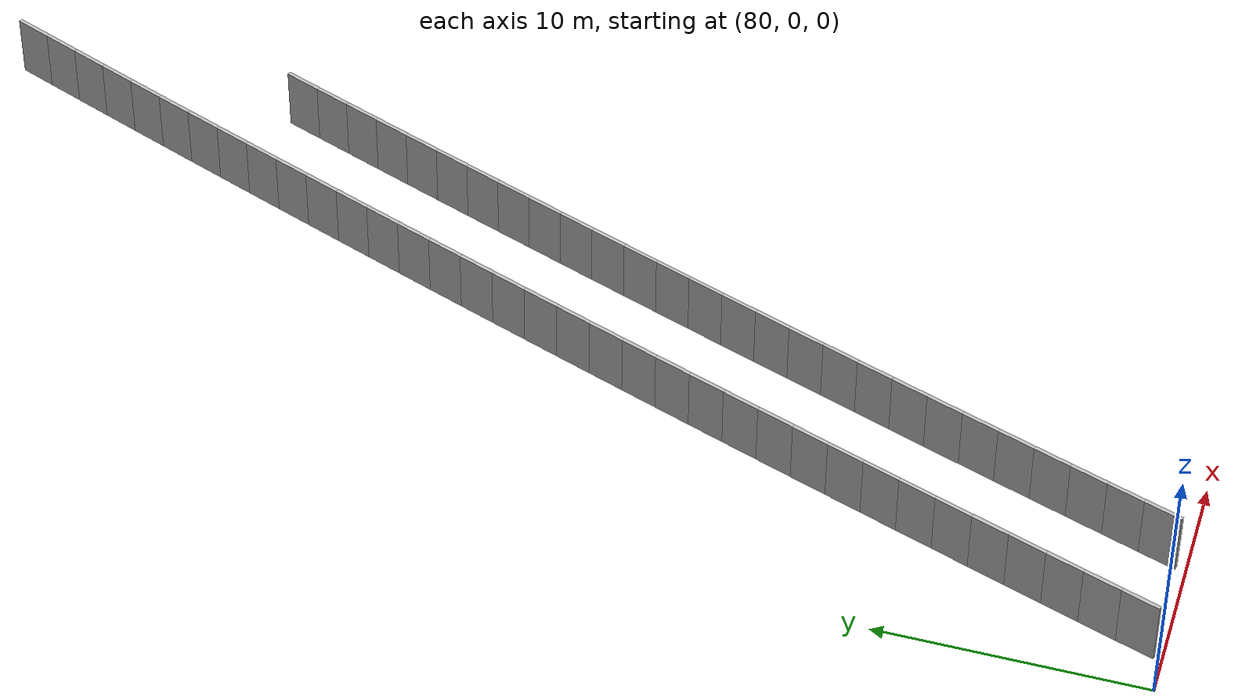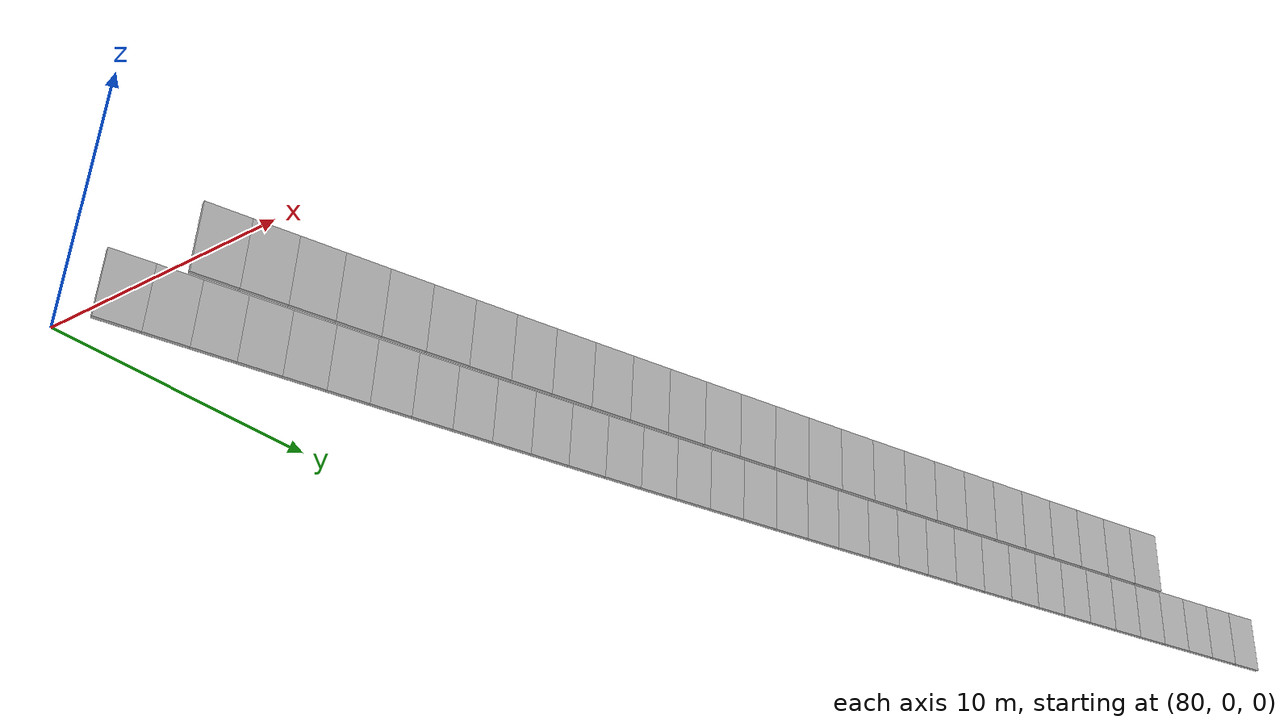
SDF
<?xml version="1.0" ?>
<sdf version="1.6">
  <model name="sps_0116">
    <pose frame="">0 0 0 0 -0 0</pose>
    <static>1</static>
    <self_collide>0</self_collide>
    <allow_auto_disable>0</allow_auto_disable>
    <link name="Wall5012">
      <kinematic>0</kinematic>
      <gravity>1</gravity>
      <self_collide>0</self_collide>
      <collision name="collision">
        <geometry>
          <box>
            <size>1.49656 0.15 2.5</size>
          </box>
        </geometry>
        <pose frame="">0 0 0 0 -0 0</pose>
      </collision>
      <visual name="visual">
        <geometry>
          <box>
            <size>1.49656 0.15 2.5</size>
          </box>
        </geometry>
        <pose frame="">0 0 0 0 -0 0</pose>
        <cast_shadows>1</cast_shadows>
        <transparency>0.0</transparency>
      </visual>
      <pose frame="">99.6162 37.5863 1.25 0 0 -1.94453</pose>
    </link>
    <link name="Wall5013">
      <kinematic>0</kinematic>
      <gravity>1</gravity>
      <self_collide>0</self_collide>
      <collision name="collision">
        <geometry>
          <box>
            <size>1.49637 0.15 2.5</size>
          </box>
        </geometry>
        <pose frame="">0 0 0 0 -0 0</pose>
      </collision>
      <visual name="visual">
        <geometry>
          <box>
            <size>1.49637 0.15 2.5</size>
          </box>
        </geometry>
        <pose frame="">0 0 0 0 -0 0</pose>
        <cast_shadows>1</cast_shadows>
        <transparency>0.0</transparency>
      </visual>
      <pose frame="">99.071 36.1927 1.25 0 0 -1.94287</pose>
    </link>
    <link name="Wall5014">
      <kinematic>0</kinematic>
      <gravity>1</gravity>
      <self_collide>0</self_collide>
      <collision name="collision">
        <geometry>
          <box>
            <size>1.49655 0.15 2.5</size>
          </box>
        </geometry>
        <pose frame="">0 0 0 0 -0 0</pose>
      </collision>
      <visual name="visual">
        <geometry>
          <box>
            <size>1.49655 0.15 2.5</size>
          </box>
        </geometry>
        <pose frame="">0 0 0 0 -0 0</pose>
        <cast_shadows>1</cast_shadows>
        <transparency>0.0</transparency>
      </visual>
      <pose frame="">98.528 34.7982 1.25 0 0 -1.94138</pose>
    </link>
    <link name="Wall5015">
      <kinematic>0</kinematic>
      <gravity>1</gravity>
      <self_collide>0</self_collide>
      <collision name="collision">
        <geometry>
          <box>
            <size>1.49649 0.15 2.5</size>
          </box>
        </geometry>
        <pose frame="">0 0 0 0 -0 0</pose>
      </collision>
      <visual name="visual">
        <geometry>
          <box>
            <size>1.49649 0.15 2.5</size>
          </box>
        </geometry>
        <pose frame="">0 0 0 0 -0 0</pose>
        <cast_shadows>1</cast_shadows>
        <transparency>0.0</transparency>
      </visual>
      <pose frame="">97.9872 33.4028 1.25 0 0 -1.93969</pose>
    </link>
    <link name="Wall5016">
      <kinematic>0</kinematic>
      <gravity>1</gravity>
      <self_collide>0</self_collide>
      <collision name="collision">
        <geometry>
          <box>
            <size>1.4965 0.15 2.5</size>
          </box>
        </geometry>
        <pose frame="">0 0 0 0 -0 0</pose>
      </collision>
      <visual name="visual">
        <geometry>
          <box>
            <size>1.4965 0.15 2.5</size>
          </box>
        </geometry>
        <pose frame="">0 0 0 0 -0 0</pose>
        <cast_shadows>1</cast_shadows>
        <transparency>0.0</transparency>
      </visual>
      <pose frame="">97.4486 32.0066 1.25 0 0 -1.93825</pose>
    </link>
    <link name="Wall5017">
      <kinematic>0</kinematic>
      <gravity>1</gravity>
      <self_collide>0</self_collide>
      <collision name="collision">
        <geometry>
          <box>
            <size>1.49637 0.15 2.5</size>
          </box>
        </geometry>
        <pose frame="">0 0 0 0 -0 0</pose>
      </collision>
      <visual name="visual">
        <geometry>
          <box>
            <size>1.49637 0.15 2.5</size>
          </box>
        </geometry>
        <pose frame="">0 0 0 0 -0 0</pose>
        <cast_shadows>1</cast_shadows>
        <transparency>0.0</transparency>
      </visual>
      <pose frame="">96.9123 30.6096 1.25 0 0 -1.93653</pose>
    </link>
    <link name="Wall5018">
      <kinematic>0</kinematic>
      <gravity>1</gravity>
      <self_collide>0</self_collide>
      <collision name="collision">
        <geometry>
          <box>
            <size>1.49664 0.15 2.5</size>
          </box>
        </geometry>
        <pose frame="">0 0 0 0 -0 0</pose>
      </collision>
      <visual name="visual">
        <geometry>
          <box>
            <size>1.49664 0.15 2.5</size>
          </box>
        </geometry>
        <pose frame="">0 0 0 0 -0 0</pose>
        <cast_shadows>1</cast_shadows>
        <transparency>0.0</transparency>
      </visual>
      <pose frame="">96.3781 29.2117 1.25 0 0 -1.93507</pose>
    </link>
    <link name="Wall5019">
      <kinematic>0</kinematic>
      <gravity>1</gravity>
      <self_collide>0</self_collide>
      <collision name="collision">
        <geometry>
          <box>
            <size>1.49654 0.15 2.5</size>
          </box>
        </geometry>
        <pose frame="">0 0 0 0 -0 0</pose>
      </collision>
      <visual name="visual">
        <geometry>
          <box>
            <size>1.49654 0.15 2.5</size>
          </box>
        </geometry>
        <pose frame="">0 0 0 0 -0 0</pose>
        <cast_shadows>1</cast_shadows>
        <transparency>0.0</transparency>
      </visual>
      <pose frame="">95.846 27.8129 1.25 0 0 -1.93352</pose>
    </link>
    <link name="Wall5020">
      <kinematic>0</kinematic>
      <gravity>1</gravity>
      <self_collide>0</self_collide>
      <collision name="collision">
        <geometry>
          <box>
            <size>1.49667 0.15 2.5</size>
          </box>
        </geometry>
        <pose frame="">0 0 0 0 -0 0</pose>
      </collision>
      <visual name="visual">
        <geometry>
          <box>
            <size>1.49667 0.15 2.5</size>
          </box>
        </geometry>
        <pose frame="">0 0 0 0 -0 0</pose>
        <cast_shadows>1</cast_shadows>
        <transparency>0.0</transparency>
      </visual>
      <pose frame="">95.3162 26.4132 1.25 0 0 -1.93179</pose>
    </link>
    <link name="Wall5021">
      <kinematic>0</kinematic>
      <gravity>1</gravity>
      <self_collide>0</self_collide>
      <collision name="collision">
        <geometry>
          <box>
            <size>1.49653 0.15 2.5</size>
          </box>
        </geometry>
        <pose frame="">0 0 0 0 -0 0</pose>
      </collision>
      <visual name="visual">
        <geometry>
          <box>
            <size>1.49653 0.15 2.5</size>
          </box>
        </geometry>
        <pose frame="">0 0 0 0 -0 0</pose>
        <cast_shadows>1</cast_shadows>
        <transparency>0.0</transparency>
      </visual>
      <pose frame="">94.7885 25.0127 1.25 0 0 -1.93038</pose>
    </link>
    <link name="Wall5022">
      <kinematic>0</kinematic>
      <gravity>1</gravity>
      <self_collide>0</self_collide>
      <collision name="collision">
        <geometry>
          <box>
            <size>1.49636 0.15 2.5</size>
          </box>
        </geometry>
        <pose frame="">0 0 0 0 -0 0</pose>
      </collision>
      <visual name="visual">
        <geometry>
          <box>
            <size>1.49636 0.15 2.5</size>
          </box>
        </geometry>
        <pose frame="">0 0 0 0 -0 0</pose>
        <cast_shadows>1</cast_shadows>
        <transparency>0.0</transparency>
      </visual>
      <pose frame="">94.2631 23.6115 1.25 0 0 -1.92868</pose>
    </link>
    <link name="Wall5023">
      <kinematic>0</kinematic>
      <gravity>1</gravity>
      <self_collide>0</self_collide>
      <collision name="collision">
        <geometry>
          <box>
            <size>1.49642 0.15 2.5</size>
          </box>
        </geometry>
        <pose frame="">0 0 0 0 -0 0</pose>
      </collision>
      <visual name="visual">
        <geometry>
          <box>
            <size>1.49642 0.15 2.5</size>
          </box>
        </geometry>
        <pose frame="">0 0 0 0 -0 0</pose>
        <cast_shadows>1</cast_shadows>
        <transparency>0.0</transparency>
      </visual>
      <pose frame="">93.74 22.2095 1.25 0 0 -1.92715</pose>
    </link>
    <link name="Wall5024">
      <kinematic>0</kinematic>
      <gravity>1</gravity>
      <self_collide>0</self_collide>
      <collision name="collision">
        <geometry>
          <box>
            <size>1.4966 0.15 2.5</size>
          </box>
        </geometry>
        <pose frame="">0 0 0 0 -0 0</pose>
      </collision>
      <visual name="visual">
        <geometry>
          <box>
            <size>1.4966 0.15 2.5</size>
          </box>
        </geometry>
        <pose frame="">0 0 0 0 -0 0</pose>
        <cast_shadows>1</cast_shadows>
        <transparency>0.0</transparency>
      </visual>
      <pose frame="">93.2191 20.8066 1.25 0 0 -1.92549</pose>
    </link>
    <link name="Wall5025">
      <kinematic>0</kinematic>
      <gravity>1</gravity>
      <self_collide>0</self_collide>
      <collision name="collision">
        <geometry>
          <box>
            <size>1.49653 0.15 2.5</size>
          </box>
        </geometry>
        <pose frame="">0 0 0 0 -0 0</pose>
      </collision>
      <visual name="visual">
        <geometry>
          <box>
            <size>1.49653 0.15 2.5</size>
          </box>
        </geometry>
        <pose frame="">0 0 0 0 -0 0</pose>
        <cast_shadows>1</cast_shadows>
        <transparency>0.0</transparency>
      </visual>
      <pose frame="">92.7005 19.4028 1.25 0 0 -1.92394</pose>
    </link>
    <link name="Wall5026">
      <kinematic>0</kinematic>
      <gravity>1</gravity>
      <self_collide>0</self_collide>
      <collision name="collision">
        <geometry>
          <box>
            <size>1.49636 0.15 2.5</size>
          </box>
        </geometry>
        <pose frame="">0 0 0 0 -0 0</pose>
      </collision>
      <visual name="visual">
        <geometry>
          <box>
            <size>1.49636 0.15 2.5</size>
          </box>
        </geometry>
        <pose frame="">0 0 0 0 -0 0</pose>
        <cast_shadows>1</cast_shadows>
        <transparency>0.0</transparency>
      </visual>
      <pose frame="">92.184 17.9983 1.25 0 0 -1.92246</pose>
    </link>
    <link name="Wall5027">
      <kinematic>0</kinematic>
      <gravity>1</gravity>
      <self_collide>0</self_collide>
      <collision name="collision">
        <geometry>
          <box>
            <size>1.4965 0.15 2.5</size>
          </box>
        </geometry>
        <pose frame="">0 0 0 0 -0 0</pose>
      </collision>
      <visual name="visual">
        <geometry>
          <box>
            <size>1.4965 0.15 2.5</size>
          </box>
        </geometry>
        <pose frame="">0 0 0 0 -0 0</pose>
        <cast_shadows>1</cast_shadows>
        <transparency>0.0</transparency>
      </visual>
      <pose frame="">91.6697 16.593 1.25 0 0 -1.92069</pose>
    </link>
    <link name="Wall5028">
      <kinematic>0</kinematic>
      <gravity>1</gravity>
      <self_collide>0</self_collide>
      <collision name="collision">
        <geometry>
          <box>
            <size>1.49655 0.15 2.5</size>
          </box>
        </geometry>
        <pose frame="">0 0 0 0 -0 0</pose>
      </collision>
      <visual name="visual">
        <geometry>
          <box>
            <size>1.49655 0.15 2.5</size>
          </box>
        </geometry>
        <pose frame="">0 0 0 0 -0 0</pose>
        <cast_shadows>1</cast_shadows>
        <transparency>0.0</transparency>
      </visual>
      <pose frame="">91.1577 15.1868 1.25 0 0 -1.91925</pose>
    </link>
    <link name="Wall5029">
      <kinematic>0</kinematic>
      <gravity>1</gravity>
      <self_collide>0</self_collide>
      <collision name="collision">
        <geometry>
          <box>
            <size>1.49655 0.15 2.5</size>
          </box>
        </geometry>
        <pose frame="">0 0 0 0 -0 0</pose>
      </collision>
      <visual name="visual">
        <geometry>
          <box>
            <size>1.49655 0.15 2.5</size>
          </box>
        </geometry>
        <pose frame="">0 0 0 0 -0 0</pose>
        <cast_shadows>1</cast_shadows>
        <transparency>0.0</transparency>
      </visual>
      <pose frame="">90.6478 13.7798 1.25 0 0 -1.91769</pose>
    </link>
    <link name="Wall5030">
      <kinematic>0</kinematic>
      <gravity>1</gravity>
      <self_collide>0</self_collide>
      <collision name="collision">
        <geometry>
          <box>
            <size>1.49637 0.15 2.5</size>
          </box>
        </geometry>
        <pose frame="">0 0 0 0 -0 0</pose>
      </collision>
      <visual name="visual">
        <geometry>
          <box>
            <size>1.49637 0.15 2.5</size>
          </box>
        </geometry>
        <pose frame="">0 0 0 0 -0 0</pose>
        <cast_shadows>1</cast_shadows>
        <transparency>0.0</transparency>
      </visual>
      <pose frame="">90.1403 12.372 1.25 0 0 -1.91591</pose>
    </link>
    <link name="Wall5031">
      <kinematic>0</kinematic>
      <gravity>1</gravity>
      <self_collide>0</self_collide>
      <collision name="collision">
        <geometry>
          <box>
            <size>1.49679 0.15 2.5</size>
          </box>
        </geometry>
        <pose frame="">0 0 0 0 -0 0</pose>
      </collision>
      <visual name="visual">
        <geometry>
          <box>
            <size>1.49679 0.15 2.5</size>
          </box>
        </geometry>
        <pose frame="">0 0 0 0 -0 0</pose>
        <cast_shadows>1</cast_shadows>
        <transparency>0.0</transparency>
      </visual>
      <pose frame="">89.635 10.9633 1.25 0 0 -1.91451</pose>
    </link>
    <link name="Wall5032">
      <kinematic>0</kinematic>
      <gravity>1</gravity>
      <self_collide>0</self_collide>
      <collision name="collision">
        <geometry>
          <box>
            <size>1.49625 0.15 2.5</size>
          </box>
        </geometry>
        <pose frame="">0 0 0 0 -0 0</pose>
      </collision>
      <visual name="visual">
        <geometry>
          <box>
            <size>1.49625 0.15 2.5</size>
          </box>
        </geometry>
        <pose frame="">0 0 0 0 -0 0</pose>
        <cast_shadows>1</cast_shadows>
        <transparency>0.0</transparency>
      </visual>
      <pose frame="">89.1319 9.55388 1.25 0 0 -1.91277</pose>
    </link>
    <link name="Wall5033">
      <kinematic>0</kinematic>
      <gravity>1</gravity>
      <self_collide>0</self_collide>
      <collision name="collision">
        <geometry>
          <box>
            <size>1.49669 0.15 2.5</size>
          </box>
        </geometry>
        <pose frame="">0 0 0 0 -0 0</pose>
      </collision>
      <visual name="visual">
        <geometry>
          <box>
            <size>1.49669 0.15 2.5</size>
          </box>
        </geometry>
        <pose frame="">0 0 0 0 -0 0</pose>
        <cast_shadows>1</cast_shadows>
        <transparency>0.0</transparency>
      </visual>
      <pose frame="">88.6312 8.14369 1.25 0 0 -1.91129</pose>
    </link>
    <link name="Wall5034">
      <kinematic>0</kinematic>
      <gravity>1</gravity>
      <self_collide>0</self_collide>
      <collision name="collision">
        <geometry>
          <box>
            <size>1.49651 0.15 2.5</size>
          </box>
        </geometry>
        <pose frame="">0 0 0 0 -0 0</pose>
      </collision>
      <visual name="visual">
        <geometry>
          <box>
            <size>1.49651 0.15 2.5</size>
          </box>
        </geometry>
        <pose frame="">0 0 0 0 -0 0</pose>
        <cast_shadows>1</cast_shadows>
        <transparency>0.0</transparency>
      </visual>
      <pose frame="">88.1326 6.73259 1.25 0 0 -1.9096</pose>
    </link>
    <link name="Wall5035">
      <kinematic>0</kinematic>
      <gravity>1</gravity>
      <self_collide>0</self_collide>
      <collision name="collision">
        <geometry>
          <box>
            <size>1.49649 0.15 2.5</size>
          </box>
        </geometry>
        <pose frame="">0 0 0 0 -0 0</pose>
      </collision>
      <visual name="visual">
        <geometry>
          <box>
            <size>1.49649 0.15 2.5</size>
          </box>
        </geometry>
        <pose frame="">0 0 0 0 -0 0</pose>
        <cast_shadows>1</cast_shadows>
        <transparency>0.0</transparency>
      </visual>
      <pose frame="">87.6363 5.32078 1.25 0 0 -1.90809</pose>
    </link>
    <link name="Wall5036">
      <kinematic>0</kinematic>
      <gravity>1</gravity>
      <self_collide>0</self_collide>
      <collision name="collision">
        <geometry>
          <box>
            <size>1.49655 0.15 2.5</size>
          </box>
        </geometry>
        <pose frame="">0 0 0 0 -0 0</pose>
      </collision>
      <visual name="visual">
        <geometry>
          <box>
            <size>1.49655 0.15 2.5</size>
          </box>
        </geometry>
        <pose frame="">0 0 0 0 -0 0</pose>
        <cast_shadows>1</cast_shadows>
        <transparency>0.0</transparency>
      </visual>
      <pose frame="">87.1421 3.90819 1.25 0 0 -1.90648</pose>
    </link>
    <link name="Wall5037">
      <kinematic>0</kinematic>
      <gravity>1</gravity>
      <self_collide>0</self_collide>
      <collision name="collision">
        <geometry>
          <box>
            <size>1.49658 0.15 2.5</size>
          </box>
        </geometry>
        <pose frame="">0 0 0 0 -0 0</pose>
      </collision>
      <visual name="visual">
        <geometry>
          <box>
            <size>1.49658 0.15 2.5</size>
          </box>
        </geometry>
        <pose frame="">0 0 0 0 -0 0</pose>
        <cast_shadows>1</cast_shadows>
        <transparency>0.0</transparency>
      </visual>
      <pose frame="">86.6502 2.4948 1.25 0 0 -1.90504</pose>
    </link>
    <link name="Wall5038">
      <kinematic>0</kinematic>
      <gravity>1</gravity>
      <self_collide>0</self_collide>
      <collision name="collision">
        <geometry>
          <box>
            <size>1.49638 0.15 2.5</size>
          </box>
        </geometry>
        <pose frame="">0 0 0 0 -0 0</pose>
      </collision>
      <visual name="visual">
        <geometry>
          <box>
            <size>1.49638 0.15 2.5</size>
          </box>
        </geometry>
        <pose frame="">0 0 0 0 -0 0</pose>
        <cast_shadows>1</cast_shadows>
        <transparency>0.0</transparency>
      </visual>
      <pose frame="">86.1605 1.0807 1.25 0 0 -1.90328</pose>
    </link>
    <link name="Wall6801">
      <kinematic>0</kinematic>
      <gravity>1</gravity>
      <self_collide>0</self_collide>
      <collision name="collision">
        <geometry>
          <box>
            <size>1.50302 0.15 2.5</size>
          </box>
        </geometry>
        <pose frame="">0 0 0 0 -0 0</pose>
      </collision>
      <visual name="visual">
        <geometry>
          <box>
            <size>1.50302 0.15 2.5</size>
          </box>
        </geometry>
        <pose frame="">0 0 0 0 -0 0</pose>
        <cast_shadows>1</cast_shadows>
        <transparency>0.0</transparency>
      </visual>
      <pose frame="">99.6587 48.8716 1.25 0 0 -1.95578</pose>
    </link>
    <link name="Wall6802">
      <kinematic>0</kinematic>
      <gravity>1</gravity>
      <self_collide>0</self_collide>
      <collision name="collision">
        <geometry>
          <box>
            <size>1.50299 0.15 2.5</size>
          </box>
        </geometry>
        <pose frame="">0 0 0 0 -0 0</pose>
      </collision>
      <visual name="visual">
        <geometry>
          <box>
            <size>1.50299 0.15 2.5</size>
          </box>
        </geometry>
        <pose frame="">0 0 0 0 -0 0</pose>
        <cast_shadows>1</cast_shadows>
        <transparency>0.0</transparency>
      </visual>
      <pose frame="">99.0955 47.4781 1.25 0 0 -1.95399</pose>
    </link>
    <link name="Wall6803">
      <kinematic>0</kinematic>
      <gravity>1</gravity>
      <self_collide>0</self_collide>
      <collision name="collision">
        <geometry>
          <box>
            <size>1.5031 0.15 2.5</size>
          </box>
        </geometry>
        <pose frame="">0 0 0 0 -0 0</pose>
      </collision>
      <visual name="visual">
        <geometry>
          <box>
            <size>1.5031 0.15 2.5</size>
          </box>
        </geometry>
        <pose frame="">0 0 0 0 -0 0</pose>
        <cast_shadows>1</cast_shadows>
        <transparency>0.0</transparency>
      </visual>
      <pose frame="">98.5346 46.0836 1.25 0 0 -1.95243</pose>
    </link>
    <link name="Wall6804">
      <kinematic>0</kinematic>
      <gravity>1</gravity>
      <self_collide>0</self_collide>
      <collision name="collision">
        <geometry>
          <box>
            <size>1.50307 0.15 2.5</size>
          </box>
        </geometry>
        <pose frame="">0 0 0 0 -0 0</pose>
      </collision>
      <visual name="visual">
        <geometry>
          <box>
            <size>1.50307 0.15 2.5</size>
          </box>
        </geometry>
        <pose frame="">0 0 0 0 -0 0</pose>
        <cast_shadows>1</cast_shadows>
        <transparency>0.0</transparency>
      </visual>
      <pose frame="">97.9759 44.6882 1.25 0 0 -1.95087</pose>
    </link>
    <link name="Wall6805">
      <kinematic>0</kinematic>
      <gravity>1</gravity>
      <self_collide>0</self_collide>
      <collision name="collision">
        <geometry>
          <box>
            <size>1.50314 0.15 2.5</size>
          </box>
        </geometry>
        <pose frame="">0 0 0 0 -0 0</pose>
      </collision>
      <visual name="visual">
        <geometry>
          <box>
            <size>1.50314 0.15 2.5</size>
          </box>
        </geometry>
        <pose frame="">0 0 0 0 -0 0</pose>
        <cast_shadows>1</cast_shadows>
        <transparency>0.0</transparency>
      </visual>
      <pose frame="">97.4194 43.2919 1.25 0 0 -1.94923</pose>
    </link>
    <link name="Wall6806">
      <kinematic>0</kinematic>
      <gravity>1</gravity>
      <self_collide>0</self_collide>
      <collision name="collision">
        <geometry>
          <box>
            <size>1.50315 0.15 2.5</size>
          </box>
        </geometry>
        <pose frame="">0 0 0 0 -0 0</pose>
      </collision>
      <visual name="visual">
        <geometry>
          <box>
            <size>1.50315 0.15 2.5</size>
          </box>
        </geometry>
        <pose frame="">0 0 0 0 -0 0</pose>
        <cast_shadows>1</cast_shadows>
        <transparency>0.0</transparency>
      </visual>
      <pose frame="">96.8651 41.8947 1.25 0 0 -1.9477</pose>
    </link>
    <link name="Wall6807">
      <kinematic>0</kinematic>
      <gravity>1</gravity>
      <self_collide>0</self_collide>
      <collision name="collision">
        <geometry>
          <box>
            <size>1.50303 0.15 2.5</size>
          </box>
        </geometry>
        <pose frame="">0 0 0 0 -0 0</pose>
      </collision>
      <visual name="visual">
        <geometry>
          <box>
            <size>1.50303 0.15 2.5</size>
          </box>
        </geometry>
        <pose frame="">0 0 0 0 -0 0</pose>
        <cast_shadows>1</cast_shadows>
        <transparency>0.0</transparency>
      </visual>
      <pose frame="">96.3129 40.4967 1.25 0 0 -1.94616</pose>
    </link>
    <link name="Wall6808">
      <kinematic>0</kinematic>
      <gravity>1</gravity>
      <self_collide>0</self_collide>
      <collision name="collision">
        <geometry>
          <box>
            <size>1.50308 0.15 2.5</size>
          </box>
        </geometry>
        <pose frame="">0 0 0 0 -0 0</pose>
      </collision>
      <visual name="visual">
        <geometry>
          <box>
            <size>1.50308 0.15 2.5</size>
          </box>
        </geometry>
        <pose frame="">0 0 0 0 -0 0</pose>
        <cast_shadows>1</cast_shadows>
        <transparency>0.0</transparency>
      </visual>
      <pose frame="">95.7629 39.0979 1.25 0 0 -1.9447</pose>
    </link>
    <link name="Wall6809">
      <kinematic>0</kinematic>
      <gravity>1</gravity>
      <self_collide>0</self_collide>
      <collision name="collision">
        <geometry>
          <box>
            <size>1.50298 0.15 2.5</size>
          </box>
        </geometry>
        <pose frame="">0 0 0 0 -0 0</pose>
      </collision>
      <visual name="visual">
        <geometry>
          <box>
            <size>1.50298 0.15 2.5</size>
          </box>
        </geometry>
        <pose frame="">0 0 0 0 -0 0</pose>
        <cast_shadows>1</cast_shadows>
        <transparency>0.0</transparency>
      </visual>
      <pose frame="">95.2152 37.6982 1.25 0 0 -1.94286</pose>
    </link>
    <link name="Wall6810">
      <kinematic>0</kinematic>
      <gravity>1</gravity>
      <self_collide>0</self_collide>
      <collision name="collision">
        <geometry>
          <box>
            <size>1.50327 0.15 2.5</size>
          </box>
        </geometry>
        <pose frame="">0 0 0 0 -0 0</pose>
      </collision>
      <visual name="visual">
        <geometry>
          <box>
            <size>1.50327 0.15 2.5</size>
          </box>
        </geometry>
        <pose frame="">0 0 0 0 -0 0</pose>
        <cast_shadows>1</cast_shadows>
        <transparency>0.0</transparency>
      </visual>
      <pose frame="">94.6699 36.2975 1.25 0 0 -1.94134</pose>
    </link>
    <link name="Wall6811">
      <kinematic>0</kinematic>
      <gravity>1</gravity>
      <self_collide>0</self_collide>
      <collision name="collision">
        <geometry>
          <box>
            <size>1.50301 0.15 2.5</size>
          </box>
        </geometry>
        <pose frame="">0 0 0 0 -0 0</pose>
      </collision>
      <visual name="visual">
        <geometry>
          <box>
            <size>1.50301 0.15 2.5</size>
          </box>
        </geometry>
        <pose frame="">0 0 0 0 -0 0</pose>
        <cast_shadows>1</cast_shadows>
        <transparency>0.0</transparency>
      </visual>
      <pose frame="">94.1265 34.896 1.25 0 0 -1.93989</pose>
    </link>
    <link name="Wall6812">
      <kinematic>0</kinematic>
      <gravity>1</gravity>
      <self_collide>0</self_collide>
      <collision name="collision">
        <geometry>
          <box>
            <size>1.50305 0.15 2.5</size>
          </box>
        </geometry>
        <pose frame="">0 0 0 0 -0 0</pose>
      </collision>
      <visual name="visual">
        <geometry>
          <box>
            <size>1.50305 0.15 2.5</size>
          </box>
        </geometry>
        <pose frame="">0 0 0 0 -0 0</pose>
        <cast_shadows>1</cast_shadows>
        <transparency>0.0</transparency>
      </visual>
      <pose frame="">93.5855 33.4937 1.25 0 0 -1.93814</pose>
    </link>
    <link name="Wall6813">
      <kinematic>0</kinematic>
      <gravity>1</gravity>
      <self_collide>0</self_collide>
      <collision name="collision">
        <geometry>
          <box>
            <size>1.50312 0.15 2.5</size>
          </box>
        </geometry>
        <pose frame="">0 0 0 0 -0 0</pose>
      </collision>
      <visual name="visual">
        <geometry>
          <box>
            <size>1.50312 0.15 2.5</size>
          </box>
        </geometry>
        <pose frame="">0 0 0 0 -0 0</pose>
        <cast_shadows>1</cast_shadows>
        <transparency>0.0</transparency>
      </visual>
      <pose frame="">93.0467 32.0905 1.25 0 0 -1.93668</pose>
    </link>
    <link name="Wall6814">
      <kinematic>0</kinematic>
      <gravity>1</gravity>
      <self_collide>0</self_collide>
      <collision name="collision">
        <geometry>
          <box>
            <size>1.50301 0.15 2.5</size>
          </box>
        </geometry>
        <pose frame="">0 0 0 0 -0 0</pose>
      </collision>
      <visual name="visual">
        <geometry>
          <box>
            <size>1.50301 0.15 2.5</size>
          </box>
        </geometry>
        <pose frame="">0 0 0 0 -0 0</pose>
        <cast_shadows>1</cast_shadows>
        <transparency>0.0</transparency>
      </visual>
      <pose frame="">92.5102 30.6865 1.25 0 0 -1.93501</pose>
    </link>
    <link name="Wall6815">
      <kinematic>0</kinematic>
      <gravity>1</gravity>
      <self_collide>0</self_collide>
      <collision name="collision">
        <geometry>
          <box>
            <size>1.50314 0.15 2.5</size>
          </box>
        </geometry>
        <pose frame="">0 0 0 0 -0 0</pose>
      </collision>
      <visual name="visual">
        <geometry>
          <box>
            <size>1.50314 0.15 2.5</size>
          </box>
        </geometry>
        <pose frame="">0 0 0 0 -0 0</pose>
        <cast_shadows>1</cast_shadows>
        <transparency>0.0</transparency>
      </visual>
      <pose frame="">91.9759 29.2816 1.25 0 0 -1.93342</pose>
    </link>
    <link name="Wall6816">
      <kinematic>0</kinematic>
      <gravity>1</gravity>
      <self_collide>0</self_collide>
      <collision name="collision">
        <geometry>
          <box>
            <size>1.50304 0.15 2.5</size>
          </box>
        </geometry>
        <pose frame="">0 0 0 0 -0 0</pose>
      </collision>
      <visual name="visual">
        <geometry>
          <box>
            <size>1.50304 0.15 2.5</size>
          </box>
        </geometry>
        <pose frame="">0 0 0 0 -0 0</pose>
        <cast_shadows>1</cast_shadows>
        <transparency>0.0</transparency>
      </visual>
      <pose frame="">91.4438 27.8758 1.25 0 0 -1.93175</pose>
    </link>
    <link name="Wall6817">
      <kinematic>0</kinematic>
      <gravity>1</gravity>
      <self_collide>0</self_collide>
      <collision name="collision">
        <geometry>
          <box>
            <size>1.50305 0.15 2.5</size>
          </box>
        </geometry>
        <pose frame="">0 0 0 0 -0 0</pose>
      </collision>
      <visual name="visual">
        <geometry>
          <box>
            <size>1.50305 0.15 2.5</size>
          </box>
        </geometry>
        <pose frame="">0 0 0 0 -0 0</pose>
        <cast_shadows>1</cast_shadows>
        <transparency>0.0</transparency>
      </visual>
      <pose frame="">90.9141 26.4692 1.25 0 0 -1.93027</pose>
    </link>
    <link name="Wall6818">
      <kinematic>0</kinematic>
      <gravity>1</gravity>
      <self_collide>0</self_collide>
      <collision name="collision">
        <geometry>
          <box>
            <size>1.5031 0.15 2.5</size>
          </box>
        </geometry>
        <pose frame="">0 0 0 0 -0 0</pose>
      </collision>
      <visual name="visual">
        <geometry>
          <box>
            <size>1.5031 0.15 2.5</size>
          </box>
        </geometry>
        <pose frame="">0 0 0 0 -0 0</pose>
        <cast_shadows>1</cast_shadows>
        <transparency>0.0</transparency>
      </visual>
      <pose frame="">90.3864 25.0618 1.25 0 0 -1.92874</pose>
    </link>
    <link name="Wall6819">
      <kinematic>0</kinematic>
      <gravity>1</gravity>
      <self_collide>0</self_collide>
      <collision name="collision">
        <geometry>
          <box>
            <size>1.50302 0.15 2.5</size>
          </box>
        </geometry>
        <pose frame="">0 0 0 0 -0 0</pose>
      </collision>
      <visual name="visual">
        <geometry>
          <box>
            <size>1.50302 0.15 2.5</size>
          </box>
        </geometry>
        <pose frame="">0 0 0 0 -0 0</pose>
        <cast_shadows>1</cast_shadows>
        <transparency>0.0</transparency>
      </visual>
      <pose frame="">89.8609 23.6536 1.25 0 0 -1.9272</pose>
    </link>
    <link name="Wall6820">
      <kinematic>0</kinematic>
      <gravity>1</gravity>
      <self_collide>0</self_collide>
      <collision name="collision">
        <geometry>
          <box>
            <size>1.50315 0.15 2.5</size>
          </box>
        </geometry>
        <pose frame="">0 0 0 0 -0 0</pose>
      </collision>
      <visual name="visual">
        <geometry>
          <box>
            <size>1.50315 0.15 2.5</size>
          </box>
        </geometry>
        <pose frame="">0 0 0 0 -0 0</pose>
        <cast_shadows>1</cast_shadows>
        <transparency>0.0</transparency>
      </visual>
      <pose frame="">89.3377 22.2445 1.25 0 0 -1.92544</pose>
    </link>
    <link name="Wall6821">
      <kinematic>0</kinematic>
      <gravity>1</gravity>
      <self_collide>0</self_collide>
      <collision name="collision">
        <geometry>
          <box>
            <size>1.50304 0.15 2.5</size>
          </box>
        </geometry>
        <pose frame="">0 0 0 0 -0 0</pose>
      </collision>
      <visual name="visual">
        <geometry>
          <box>
            <size>1.50304 0.15 2.5</size>
          </box>
        </geometry>
        <pose frame="">0 0 0 0 -0 0</pose>
        <cast_shadows>1</cast_shadows>
        <transparency>0.0</transparency>
      </visual>
      <pose frame="">88.8167 20.8346 1.25 0 0 -1.92408</pose>
    </link>
    <link name="Wall6822">
      <kinematic>0</kinematic>
      <gravity>1</gravity>
      <self_collide>0</self_collide>
      <collision name="collision">
        <geometry>
          <box>
            <size>1.50312 0.15 2.5</size>
          </box>
        </geometry>
        <pose frame="">0 0 0 0 -0 0</pose>
      </collision>
      <visual name="visual">
        <geometry>
          <box>
            <size>1.50312 0.15 2.5</size>
          </box>
        </geometry>
        <pose frame="">0 0 0 0 -0 0</pose>
        <cast_shadows>1</cast_shadows>
        <transparency>0.0</transparency>
      </visual>
      <pose frame="">88.2979 19.4239 1.25 0 0 -1.92233</pose>
    </link>
    <link name="Wall6823">
      <kinematic>0</kinematic>
      <gravity>1</gravity>
      <self_collide>0</self_collide>
      <collision name="collision">
        <geometry>
          <box>
            <size>1.50295 0.15 2.5</size>
          </box>
        </geometry>
        <pose frame="">0 0 0 0 -0 0</pose>
      </collision>
      <visual name="visual">
        <geometry>
          <box>
            <size>1.50295 0.15 2.5</size>
          </box>
        </geometry>
        <pose frame="">0 0 0 0 -0 0</pose>
        <cast_shadows>1</cast_shadows>
        <transparency>0.0</transparency>
      </visual>
      <pose frame="">87.7814 18.0124 1.25 0 0 -1.92085</pose>
    </link>
    <link name="Wall6824">
      <kinematic>0</kinematic>
      <gravity>1</gravity>
      <self_collide>0</self_collide>
      <collision name="collision">
        <geometry>
          <box>
            <size>1.50304 0.15 2.5</size>
          </box>
        </geometry>
        <pose frame="">0 0 0 0 -0 0</pose>
      </collision>
      <visual name="visual">
        <geometry>
          <box>
            <size>1.50304 0.15 2.5</size>
          </box>
        </geometry>
        <pose frame="">0 0 0 0 -0 0</pose>
        <cast_shadows>1</cast_shadows>
        <transparency>0.0</transparency>
      </visual>
      <pose frame="">87.2671 16.6001 1.25 0 0 -1.91911</pose>
    </link>
    <link name="Wall6825">
      <kinematic>0</kinematic>
      <gravity>1</gravity>
      <self_collide>0</self_collide>
      <collision name="collision">
        <geometry>
          <box>
            <size>1.50303 0.15 2.5</size>
          </box>
        </geometry>
        <pose frame="">0 0 0 0 -0 0</pose>
      </collision>
      <visual name="visual">
        <geometry>
          <box>
            <size>1.50303 0.15 2.5</size>
          </box>
        </geometry>
        <pose frame="">0 0 0 0 -0 0</pose>
        <cast_shadows>1</cast_shadows>
        <transparency>0.0</transparency>
      </visual>
      <pose frame="">86.7552 15.1869 1.25 0 0 -1.91755</pose>
    </link>
    <link name="Wall6826">
      <kinematic>0</kinematic>
      <gravity>1</gravity>
      <self_collide>0</self_collide>
      <collision name="collision">
        <geometry>
          <box>
            <size>1.50309 0.15 2.5</size>
          </box>
        </geometry>
        <pose frame="">0 0 0 0 -0 0</pose>
      </collision>
      <visual name="visual">
        <geometry>
          <box>
            <size>1.50309 0.15 2.5</size>
          </box>
        </geometry>
        <pose frame="">0 0 0 0 -0 0</pose>
        <cast_shadows>1</cast_shadows>
        <transparency>0.0</transparency>
      </visual>
      <pose frame="">86.2455 13.7729 1.25 0 0 -1.91598</pose>
    </link>
    <link name="Wall6827">
      <kinematic>0</kinematic>
      <gravity>1</gravity>
      <self_collide>0</self_collide>
      <collision name="collision">
        <geometry>
          <box>
            <size>1.50316 0.15 2.5</size>
          </box>
        </geometry>
        <pose frame="">0 0 0 0 -0 0</pose>
      </collision>
      <visual name="visual">
        <geometry>
          <box>
            <size>1.50316 0.15 2.5</size>
          </box>
        </geometry>
        <pose frame="">0 0 0 0 -0 0</pose>
        <cast_shadows>1</cast_shadows>
        <transparency>0.0</transparency>
      </visual>
      <pose frame="">85.7379 12.3581 1.25 0 0 -1.91454</pose>
    </link>
    <link name="Wall6828">
      <kinematic>0</kinematic>
      <gravity>1</gravity>
      <self_collide>0</self_collide>
      <collision name="collision">
        <geometry>
          <box>
            <size>1.50297 0.15 2.5</size>
          </box>
        </geometry>
        <pose frame="">0 0 0 0 -0 0</pose>
      </collision>
      <visual name="visual">
        <geometry>
          <box>
            <size>1.50297 0.15 2.5</size>
          </box>
        </geometry>
        <pose frame="">0 0 0 0 -0 0</pose>
        <cast_shadows>1</cast_shadows>
        <transparency>0.0</transparency>
      </visual>
      <pose frame="">85.2327 10.9425 1.25 0 0 -1.91274</pose>
    </link>
    <link name="Wall6829">
      <kinematic>0</kinematic>
      <gravity>1</gravity>
      <self_collide>0</self_collide>
      <collision name="collision">
        <geometry>
          <box>
            <size>1.50312 0.15 2.5</size>
          </box>
        </geometry>
        <pose frame="">0 0 0 0 -0 0</pose>
      </collision>
      <visual name="visual">
        <geometry>
          <box>
            <size>1.50312 0.15 2.5</size>
          </box>
        </geometry>
        <pose frame="">0 0 0 0 -0 0</pose>
        <cast_shadows>1</cast_shadows>
        <transparency>0.0</transparency>
      </visual>
      <pose frame="">84.7297 9.52611 1.25 0 0 -1.91132</pose>
    </link>
    <link name="Wall6830">
      <kinematic>0</kinematic>
      <gravity>1</gravity>
      <self_collide>0</self_collide>
      <collision name="collision">
        <geometry>
          <box>
            <size>1.50313 0.15 2.5</size>
          </box>
        </geometry>
        <pose frame="">0 0 0 0 -0 0</pose>
      </collision>
      <visual name="visual">
        <geometry>
          <box>
            <size>1.50313 0.15 2.5</size>
          </box>
        </geometry>
        <pose frame="">0 0 0 0 -0 0</pose>
        <cast_shadows>1</cast_shadows>
        <transparency>0.0</transparency>
      </visual>
      <pose frame="">84.2288 8.1089 1.25 0 0 -1.90977</pose>
    </link>
    <link name="Wall6831">
      <kinematic>0</kinematic>
      <gravity>1</gravity>
      <self_collide>0</self_collide>
      <collision name="collision">
        <geometry>
          <box>
            <size>1.50296 0.15 2.5</size>
          </box>
        </geometry>
        <pose frame="">0 0 0 0 -0 0</pose>
      </collision>
      <visual name="visual">
        <geometry>
          <box>
            <size>1.50296 0.15 2.5</size>
          </box>
        </geometry>
        <pose frame="">0 0 0 0 -0 0</pose>
        <cast_shadows>1</cast_shadows>
        <transparency>0.0</transparency>
      </visual>
      <pose frame="">83.7301 6.69099 1.25 0 0 -1.90821</pose>
    </link>
    <link name="Wall6832">
      <kinematic>0</kinematic>
      <gravity>1</gravity>
      <self_collide>0</self_collide>
      <collision name="collision">
        <geometry>
          <box>
            <size>1.50306 0.15 2.5</size>
          </box>
        </geometry>
        <pose frame="">0 0 0 0 -0 0</pose>
      </collision>
      <visual name="visual">
        <geometry>
          <box>
            <size>1.50306 0.15 2.5</size>
          </box>
        </geometry>
        <pose frame="">0 0 0 0 -0 0</pose>
        <cast_shadows>1</cast_shadows>
        <transparency>0.0</transparency>
      </visual>
      <pose frame="">83.2338 5.27229 1.25 0 0 -1.90643</pose>
    </link>
    <link name="Wall6833">
      <kinematic>0</kinematic>
      <gravity>1</gravity>
      <self_collide>0</self_collide>
      <collision name="collision">
        <geometry>
          <box>
            <size>1.50306 0.15 2.5</size>
          </box>
        </geometry>
        <pose frame="">0 0 0 0 -0 0</pose>
      </collision>
      <visual name="visual">
        <geometry>
          <box>
            <size>1.50306 0.15 2.5</size>
          </box>
        </geometry>
        <pose frame="">0 0 0 0 -0 0</pose>
        <cast_shadows>1</cast_shadows>
        <transparency>0.0</transparency>
      </visual>
      <pose frame="">82.7398 3.85271 1.25 0 0 -1.90484</pose>
    </link>
    <link name="Wall6834">
      <kinematic>0</kinematic>
      <gravity>1</gravity>
      <self_collide>0</self_collide>
      <collision name="collision">
        <geometry>
          <box>
            <size>1.50321 0.15 2.5</size>
          </box>
        </geometry>
        <pose frame="">0 0 0 0 -0 0</pose>
      </collision>
      <visual name="visual">
        <geometry>
          <box>
            <size>1.50321 0.15 2.5</size>
          </box>
        </geometry>
        <pose frame="">0 0 0 0 -0 0</pose>
        <cast_shadows>1</cast_shadows>
        <transparency>0.0</transparency>
      </visual>
      <pose frame="">82.248 2.4323 1.25 0 0 -1.90338</pose>
    </link>
    <link name="Wall6835">
      <kinematic>0</kinematic>
      <gravity>1</gravity>
      <self_collide>0</self_collide>
      <collision name="collision">
        <geometry>
          <box>
            <size>1.50313 0.15 2.5</size>
          </box>
        </geometry>
        <pose frame="">0 0 0 0 -0 0</pose>
      </collision>
      <visual name="visual">
        <geometry>
          <box>
            <size>1.50313 0.15 2.5</size>
          </box>
        </geometry>
        <pose frame="">0 0 0 0 -0 0</pose>
        <cast_shadows>1</cast_shadows>
        <transparency>0.0</transparency>
      </visual>
      <pose frame="">81.7584 1.01109 1.25 0 0 -1.90173</pose>
    </link>
  </model>
</sdf>
